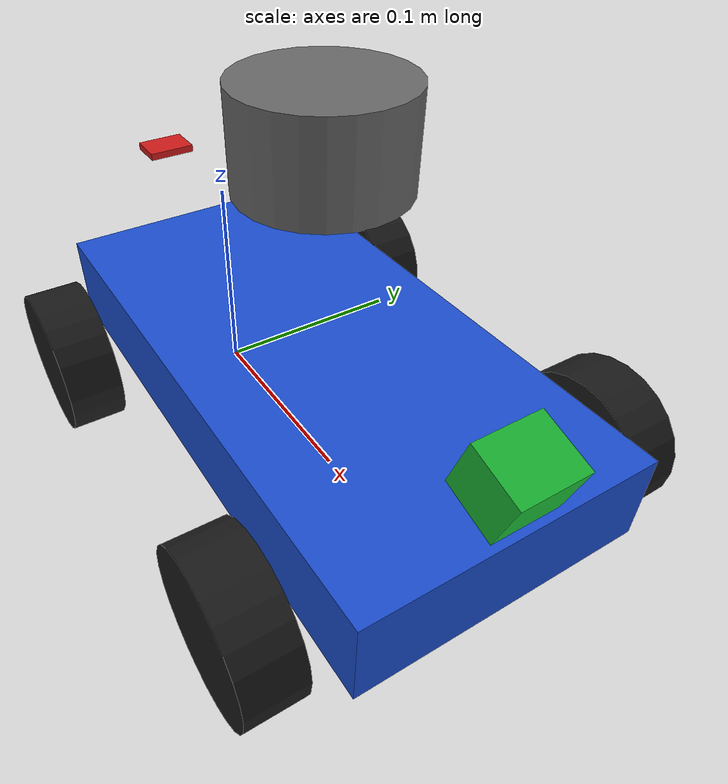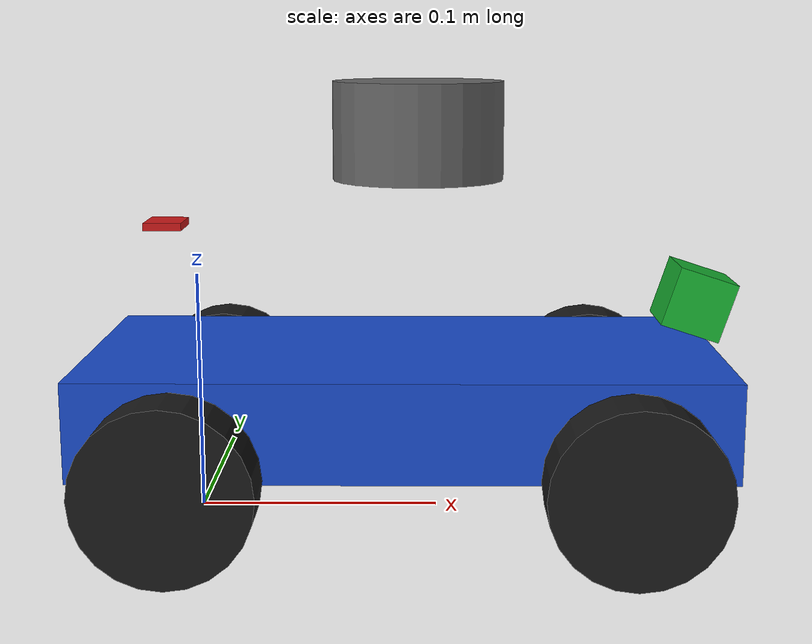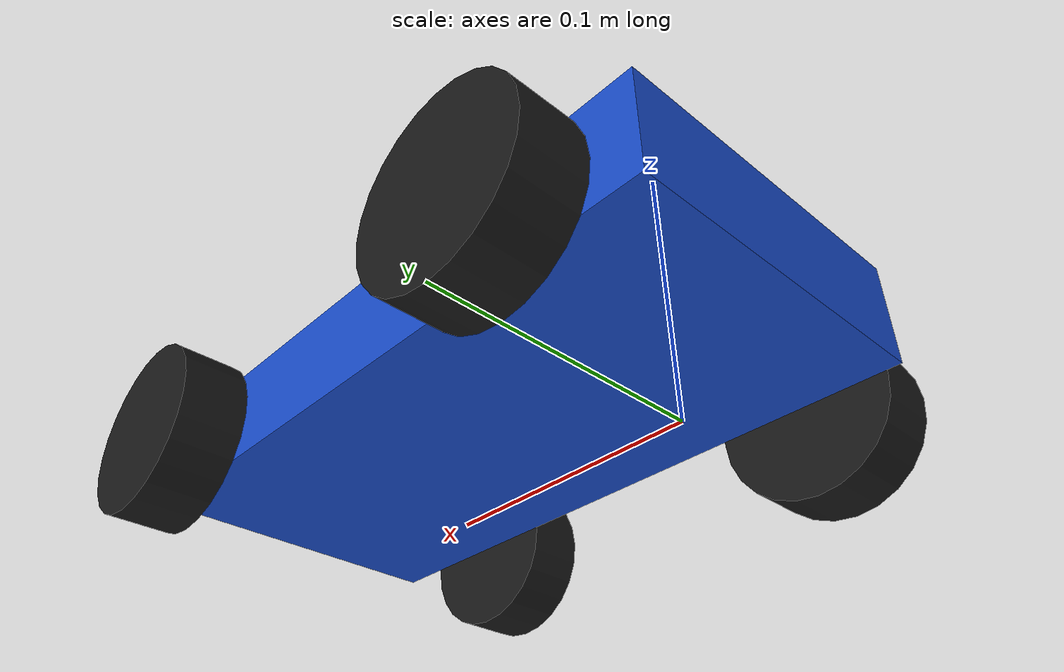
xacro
<?xml version="1.0"?>
<robot name="ackermann_bot" xmlns:xacro="http://www.ros.org/wiki/xacro">

  <xacro:property name="wheelbase"    value="0.173"/>
  <xacro:property name="track_width"  value="0.1745"/>
  <xacro:property name="wheel_radius" value="0.03415"/>
  <xacro:property name="wheel_width"  value="0.025"/>

  <!-- LIDAR -->
  <xacro:property name="lidar_x"   value="0.09225"/>
  <xacro:property name="lidar_y"   value="0.0"/>
  <xacro:property name="lidar_z"   value="0.125695"/>
  <xacro:property name="lidar_yaw" value="0.0"/>   <!-- verify in RViz, Step 4.5 -->

  <!-- Camera (tilted 18 deg nose-down) -->
  <xacro:property name="camera_x"     value="0.2075"/>
  <xacro:property name="camera_y"     value="0.0005"/>
  <xacro:property name="camera_z"     value="0.05561"/>
  <xacro:property name="camera_pitch" value="0.314159"/>

  <!-- IMU (board rotated -90 deg about Z) -->
  <xacro:property name="imu_x"   value="-0.00821"/>
  <xacro:property name="imu_y"   value="-0.0225"/>
  <xacro:property name="imu_z"   value="0.09005"/>
  <xacro:property name="imu_yaw" value="-1.5708"/>

  <material name="grey">  <color rgba="0.4 0.4 0.4 1.0"/></material>
  <material name="black"> <color rgba="0.1 0.1 0.1 1.0"/></material>
  <material name="blue">  <color rgba="0.1 0.3 0.8 1.0"/></material>
  <material name="red">   <color rgba="0.8 0.1 0.1 1.0"/></material>
  <material name="green"> <color rgba="0.1 0.7 0.2 1.0"/></material>

  <!-- base_footprint: ground projection of base_link -->
  <link name="base_footprint"/>

  <joint name="base_footprint_to_base_link" type="fixed">
    <parent link="base_footprint"/>
    <child  link="base_link"/>
    <origin xyz="0 0 ${wheel_radius}" rpy="0 0 0"/>
  </joint>

  <!-- base_link: vehicle body -->
  <link name="base_link">
    <visual>
      <origin xyz="${wheelbase/2} 0 0.015" rpy="0 0 0"/>
      <geometry>
        <box size="0.26 0.13 0.04"/>
      </geometry>
      <material name="blue"/>
    </visual>
  </link>

  <!-- Wheels (fixed; cylinder axis rotated to lie along Y) -->
  <xacro:macro name="wheel" params="name x y">
    <link name="${name}">
      <visual>
        <origin xyz="0 0 0" rpy="1.5708 0 0"/>
        <geometry>
          <cylinder radius="${wheel_radius}" length="${wheel_width}"/>
        </geometry>
        <material name="black"/>
      </visual>
    </link>
    <joint name="${name}_joint" type="fixed">
      <parent link="base_link"/>
      <child  link="${name}"/>
      <origin xyz="${x} ${y} 0" rpy="0 0 0"/>
    </joint>
  </xacro:macro>

  <xacro:wheel name="wheel_rear_left"   x="0"            y="${ track_width/2}"/>
  <xacro:wheel name="wheel_rear_right"  x="0"            y="${-track_width/2}"/>
  <xacro:wheel name="wheel_front_left"  x="${wheelbase}" y="${ track_width/2}"/>
  <xacro:wheel name="wheel_front_right" x="${wheelbase}" y="${-track_width/2}"/>

  <!-- LIDAR -->
  <link name="lidar_link">
    <visual>
      <geometry>
        <cylinder radius="0.035" length="0.04"/>
      </geometry>
      <material name="grey"/>
    </visual>
  </link>
  <joint name="lidar_joint" type="fixed">
    <parent link="base_link"/>
    <child  link="lidar_link"/>
    <origin xyz="${lidar_x} ${lidar_y} ${lidar_z}" rpy="0 0 ${lidar_yaw}"/>
  </joint>

  <!-- Camera -->
  <link name="camera_link">
    <visual>
      <geometry>
        <box size="0.025 0.03 0.025"/>
      </geometry>
      <material name="green"/>
    </visual>
  </link>
  <joint name="camera_joint" type="fixed">
    <parent link="base_link"/>
    <child  link="camera_link"/>
    <origin xyz="${camera_x} ${camera_y} ${camera_z}" rpy="0 ${camera_pitch} 0"/>
  </joint>

  <!-- IMU -->
  <link name="imu_link">
    <visual>
      <geometry>
        <box size="0.02 0.015 0.003"/>
      </geometry>
      <material name="red"/>
    </visual>
  </link>
  <joint name="imu_joint" type="fixed">
    <parent link="base_link"/>
    <child  link="imu_link"/>
    <origin xyz="${imu_x} ${imu_y} ${imu_z}" rpy="0 0 ${imu_yaw}"/>
  </joint>

</robot>
